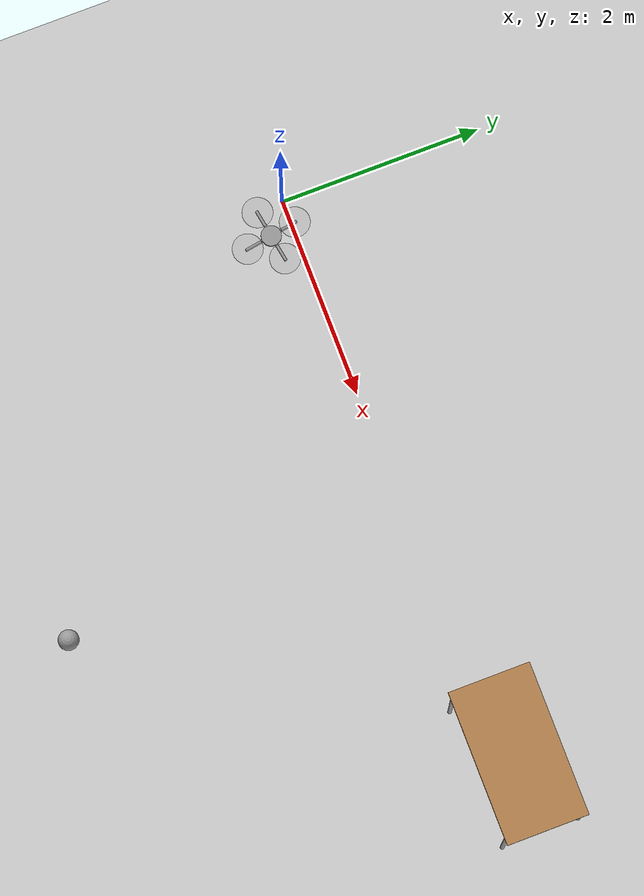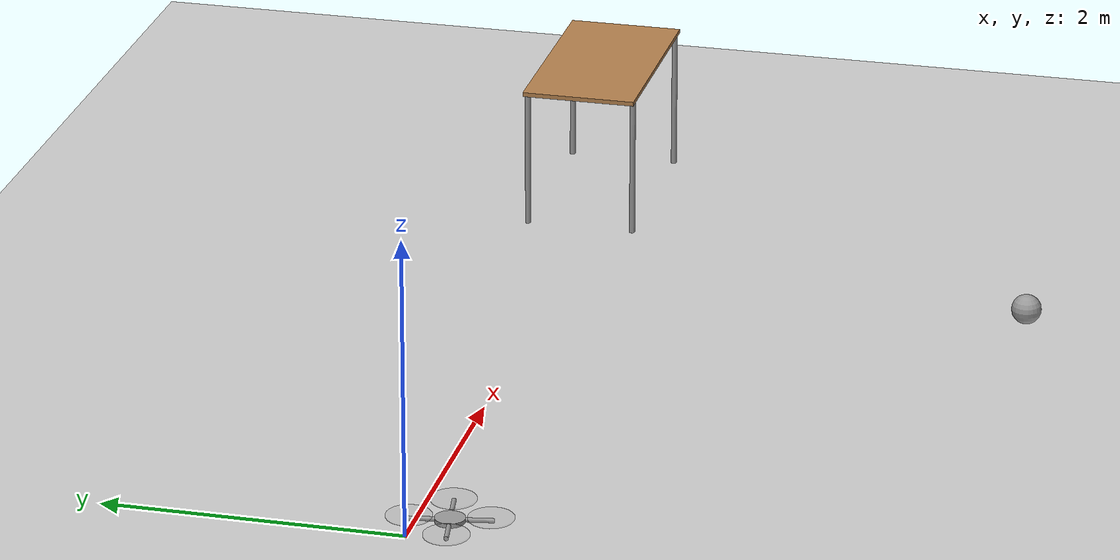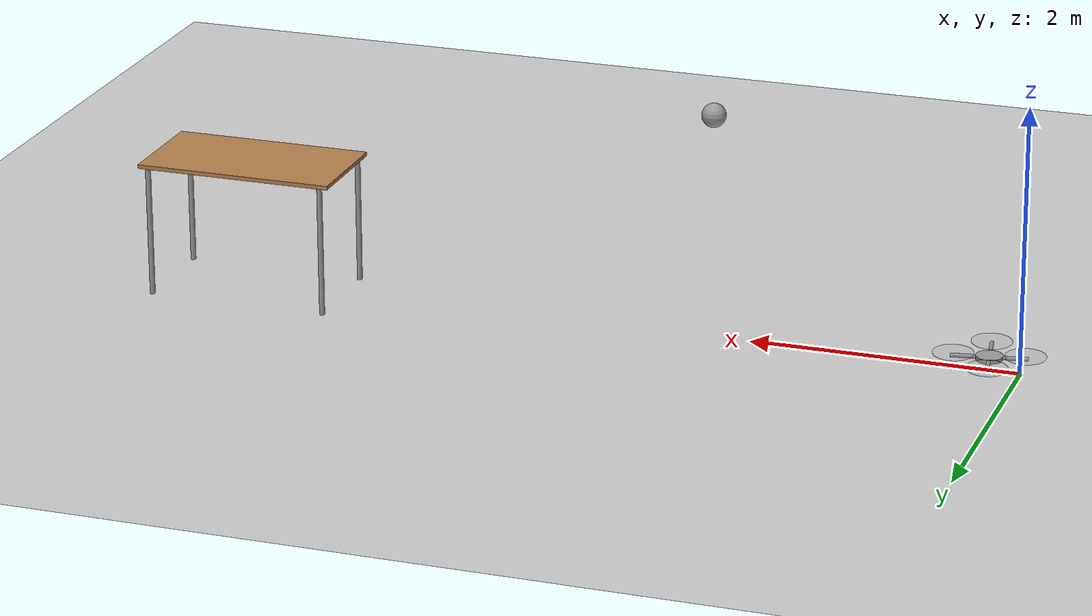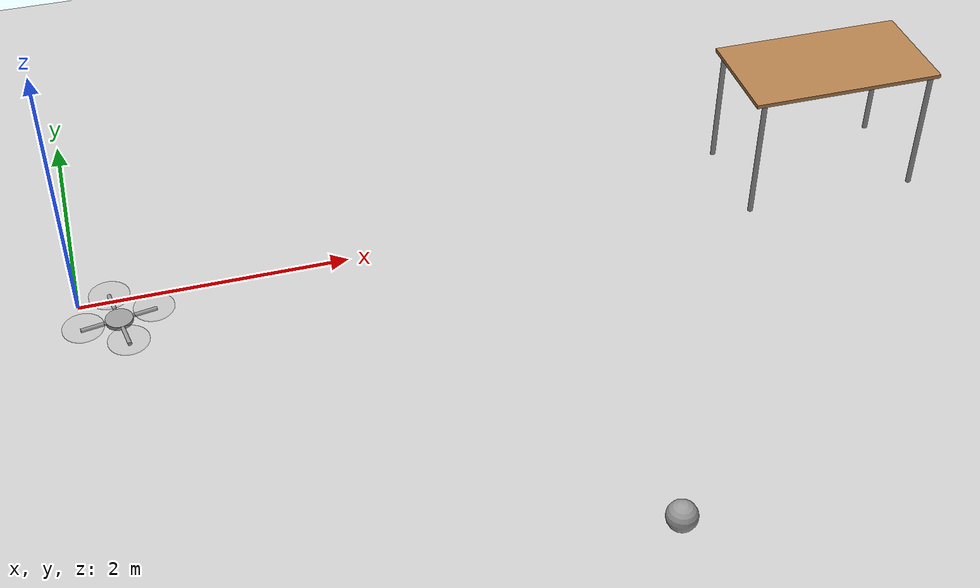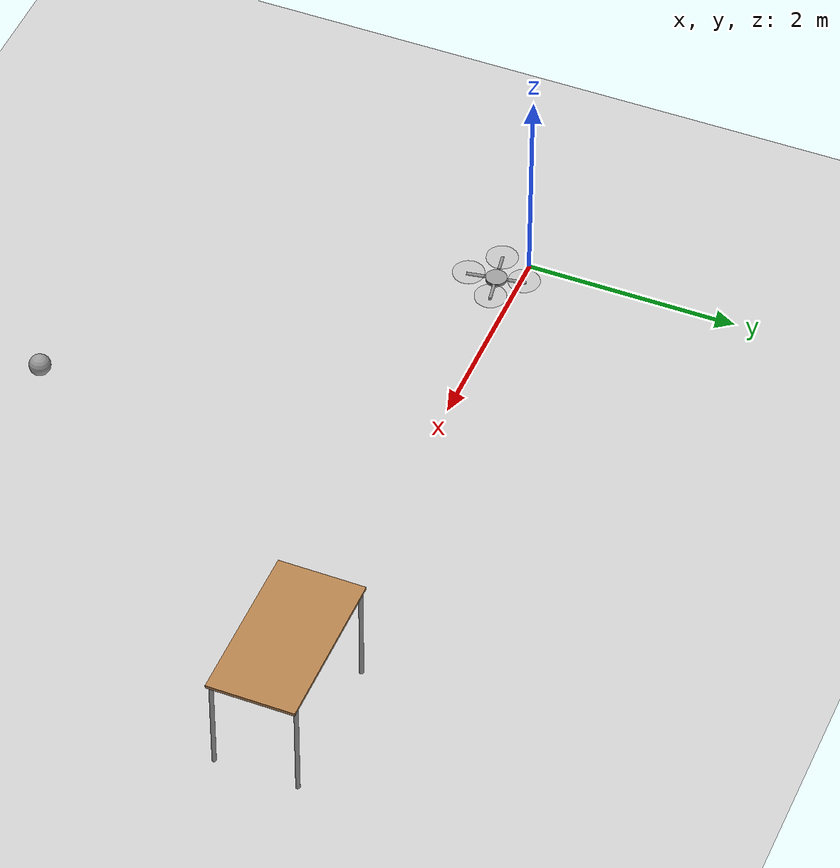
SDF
<sdf version="1.7">
 <world name="default">
  <model name="ground_plane">
   <static>1</static>
   <link name="link1">
    <collision name="collision">
     <geometry><plane><normal>0 0 1</normal><size>100 100</size></plane></geometry>
     <surface>
      <contact><collide_bitmask>65535</collide_bitmask></contact>
      <friction><ode><mu>100</mu><mu2>50</mu2></ode></friction>
     </surface>
    </collision>
    <visual name="visual">
     <cast_shadows>0</cast_shadows>
     <geometry><plane><normal>0 0 1</normal><size>100 100</size></plane></geometry>
     <material>
      <script><uri>file://media/materials/scripts/gazebo.material</uri><name>Gazebo/Grey</name></script>
     </material>
    </visual>
   </link>
  </model>
  <model name="quadrocopter">
   <link name="link_0">
    <inertial>
     <mass>1.10741</mass>
     <inertia>
      <ixx>0.00285158</ixx>
      <ixy>0</ixy>
      <ixz>0</ixz>
      <iyy>0.00285158</iyy>
      <iyz>0</iyz>
      <izz>0.00553706</izz>
     </inertia>
    </inertial>
    <pose>0.00067 0.037339 -0.008889 0 -0 0</pose>
    <visual name="visual">
     <geometry><cylinder><radius>0.1</radius><length>0.03</length></cylinder></geometry>
     <material>
      <lighting>1</lighting>
      <script><uri>file://media/materials/scripts/gazebo.material</uri><name>Gazebo/Grey</name></script>
      <shader type="pixel"><normal_map>__default__</normal_map></shader>
      <ambient>0.3 0.3 0.3 1</ambient>
      <diffuse>0.7 0.7 0.7 1</diffuse>
      <specular>0.01 0.01 0.01 1</specular>
      <emissive>0 0 0 1</emissive>
     </material>
    </visual>
    <collision name="collision">
     <geometry><cylinder><radius>0.1</radius><length>0.03</length></cylinder></geometry>
     <surface>
      <friction>
       <ode><mu>1</mu><mu2>1</mu2><fdir1>0 0 0</fdir1><slip1>0</slip1><slip2>0</slip2></ode>
       <torsional>
        <coefficient>1</coefficient>
        <patch_radius>0</patch_radius>
        <surface_radius>0</surface_radius>
        <use_patch_radius>1</use_patch_radius>
        <ode><slip>0</slip></ode>
       </torsional>
      </friction>
      <bounce><restitution_coefficient>0</restitution_coefficient><threshold>1e+06</threshold></bounce>
      <contact>
       <collide_without_contact>0</collide_without_contact>
       <collide_without_contact_bitmask>1</collide_without_contact_bitmask>
       <collide_bitmask>1</collide_bitmask>
       <ode>
        <soft_cfm>0</soft_cfm>
        <soft_erp>0.2</soft_erp>
        <kp>1e+13</kp>
        <kd>1</kd>
        <max_vel>0.01</max_vel>
        <min_depth>0</min_depth>
       </ode>
       <bullet>
        <split_impulse>1</split_impulse>
        <split_impulse_penetration_threshold>-0.01</split_impulse_penetration_threshold>
        <soft_cfm>0</soft_cfm>
        <soft_erp>0.2</soft_erp>
        <kp>1e+13</kp>
        <kd>1</kd>
       </bullet>
      </contact>
     </surface>
    </collision>
   </link>
   <link name="link_0_clone">
    <inertial>
     <mass>1.10741</mass>
     <inertia>
      <ixx>0.00285158</ixx>
      <ixy>0</ixy>
      <ixz>0</ixz>
      <iyy>0.00285158</iyy>
      <iyz>0</iyz>
      <izz>0.00553706</izz>
     </inertia>
    </inertial>
    <pose>0.00067 -0.222661 0.011111 0 -0 0</pose>
    <visual name="visual">
     <geometry><cylinder><radius>0.15</radius><length>0.01</length></cylinder></geometry>
     <material>
      <lighting>1</lighting>
      <script><uri>file://media/materials/scripts/gazebo.material</uri><name>Gazebo/Grey</name></script>
      <shader type="pixel"><normal_map>__default__</normal_map></shader>
      <ambient>0.1 0.1 0.1 1</ambient>
      <diffuse>0.7 0.7 0.7 1</diffuse>
      <specular>0.01 0.01 0.01 1</specular>
      <emissive>0 0 0 1</emissive>
     </material>
     <transparency>0.9</transparency>
    </visual>
    <collision name="collision">
     <geometry><cylinder><radius>0.15</radius><length>0.01</length></cylinder></geometry>
     <surface>
      <friction>
       <ode><mu>1</mu><mu2>1</mu2><fdir1>0 0 0</fdir1><slip1>0</slip1><slip2>0</slip2></ode>
       <torsional>
        <coefficient>1</coefficient>
        <patch_radius>0</patch_radius>
        <surface_radius>0</surface_radius>
        <use_patch_radius>1</use_patch_radius>
        <ode><slip>0</slip></ode>
       </torsional>
      </friction>
      <bounce><restitution_coefficient>0</restitution_coefficient><threshold>1e+06</threshold></bounce>
      <contact>
       <collide_without_contact>0</collide_without_contact>
       <collide_without_contact_bitmask>1</collide_without_contact_bitmask>
       <collide_bitmask>1</collide_bitmask>
       <ode>
        <soft_cfm>0</soft_cfm>
        <soft_erp>0.2</soft_erp>
        <kp>1e+13</kp>
        <kd>1</kd>
        <max_vel>0.01</max_vel>
        <min_depth>0</min_depth>
       </ode>
       <bullet>
        <split_impulse>1</split_impulse>
        <split_impulse_penetration_threshold>-0.01</split_impulse_penetration_threshold>
        <soft_cfm>0</soft_cfm>
        <soft_erp>0.2</soft_erp>
        <kp>1e+13</kp>
        <kd>1</kd>
       </bullet>
      </contact>
     </surface>
    </collision>
   </link>
   <link name="link_0_clone_clone">
    <inertial>
     <mass>1.10741</mass>
     <inertia>
      <ixx>0.00285158</ixx>
      <ixy>0</ixy>
      <ixz>0</ixz>
      <iyy>0.00285158</iyy>
      <iyz>0</iyz>
      <izz>0.00553706</izz>
     </inertia>
    </inertial>
    <pose>-0.25933 0.037339 0.011111 0 -0 0</pose>
    <visual name="visual">
     <geometry><cylinder><radius>0.15</radius><length>0.01</length></cylinder></geometry>
     <material>
      <lighting>1</lighting>
      <script><uri>file://media/materials/scripts/gazebo.material</uri><name>Gazebo/Grey</name></script>
      <shader type="pixel"><normal_map>__default__</normal_map></shader>
      <ambient>0.1 0.1 0.1 1</ambient>
      <diffuse>0.7 0.7 0.7 1</diffuse>
      <specular>0.01 0.01 0.01 1</specular>
      <emissive>0 0 0 1</emissive>
     </material>
     <transparency>0.9</transparency>
    </visual>
    <collision name="collision">
     <geometry><cylinder><radius>0.15</radius><length>0.01</length></cylinder></geometry>
     <surface>
      <friction>
       <ode><mu>1</mu><mu2>1</mu2><fdir1>0 0 0</fdir1><slip1>0</slip1><slip2>0</slip2></ode>
       <torsional>
        <coefficient>1</coefficient>
        <patch_radius>0</patch_radius>
        <surface_radius>0</surface_radius>
        <use_patch_radius>1</use_patch_radius>
        <ode><slip>0</slip></ode>
       </torsional>
      </friction>
      <bounce><restitution_coefficient>0</restitution_coefficient><threshold>1e+06</threshold></bounce>
      <contact>
       <collide_without_contact>0</collide_without_contact>
       <collide_without_contact_bitmask>1</collide_without_contact_bitmask>
       <collide_bitmask>1</collide_bitmask>
       <ode>
        <soft_cfm>0</soft_cfm>
        <soft_erp>0.2</soft_erp>
        <kp>1e+13</kp>
        <kd>1</kd>
        <max_vel>0.01</max_vel>
        <min_depth>0</min_depth>
       </ode>
       <bullet>
        <split_impulse>1</split_impulse>
        <split_impulse_penetration_threshold>-0.01</split_impulse_penetration_threshold>
        <soft_cfm>0</soft_cfm>
        <soft_erp>0.2</soft_erp>
        <kp>1e+13</kp>
        <kd>1</kd>
       </bullet>
      </contact>
     </surface>
    </collision>
   </link>
   <link name="link_0_clone_clone_0">
    <inertial>
     <mass>1.10741</mass>
     <inertia>
      <ixx>0.00285158</ixx>
      <ixy>0</ixy>
      <ixz>0</ixz>
      <iyy>0.00285158</iyy>
      <iyz>0</iyz>
      <izz>0.00553706</izz>
     </inertia>
    </inertial>
    <pose>0.00067 0.297339 0.011111 0 -0 0</pose>
    <visual name="visual">
     <geometry><cylinder><radius>0.15</radius><length>0.01</length></cylinder></geometry>
     <material>
      <lighting>1</lighting>
      <script><uri>file://media/materials/scripts/gazebo.material</uri><name>Gazebo/Grey</name></script>
      <shader type="pixel"><normal_map>__default__</normal_map></shader>
      <ambient>0.1 0.1 0.1 1</ambient>
      <diffuse>0.7 0.7 0.7 1</diffuse>
      <specular>0.01 0.01 0.01 1</specular>
      <emissive>0 0 0 1</emissive>
     </material>
     <transparency>0.9</transparency>
    </visual>
    <collision name="collision">
     <geometry><cylinder><radius>0.15</radius><length>0.01</length></cylinder></geometry>
     <surface>
      <friction>
       <ode><mu>1</mu><mu2>1</mu2><fdir1>0 0 0</fdir1><slip1>0</slip1><slip2>0</slip2></ode>
       <torsional>
        <coefficient>1</coefficient>
        <patch_radius>0</patch_radius>
        <surface_radius>0</surface_radius>
        <use_patch_radius>1</use_patch_radius>
        <ode><slip>0</slip></ode>
       </torsional>
      </friction>
      <bounce><restitution_coefficient>0</restitution_coefficient><threshold>1e+06</threshold></bounce>
      <contact>
       <collide_without_contact>0</collide_without_contact>
       <collide_without_contact_bitmask>1</collide_without_contact_bitmask>
       <collide_bitmask>1</collide_bitmask>
       <ode>
        <soft_cfm>0</soft_cfm>
        <soft_erp>0.2</soft_erp>
        <kp>1e+13</kp>
        <kd>1</kd>
        <max_vel>0.01</max_vel>
        <min_depth>0</min_depth>
       </ode>
       <bullet>
        <split_impulse>1</split_impulse>
        <split_impulse_penetration_threshold>-0.01</split_impulse_penetration_threshold>
        <soft_cfm>0</soft_cfm>
        <soft_erp>0.2</soft_erp>
        <kp>1e+13</kp>
        <kd>1</kd>
       </bullet>
      </contact>
     </surface>
    </collision>
   </link>
   <link name="link_0_clone_clone_1">
    <inertial>
     <mass>1.10741</mass>
     <inertia>
      <ixx>0.00285158</ixx>
      <ixy>0</ixy>
      <ixz>0</ixz>
      <iyy>0.00285158</iyy>
      <iyz>0</iyz>
      <izz>0.00553706</izz>
     </inertia>
    </inertial>
    <pose>0.26067 0.037339 0.011111 0 -0 0</pose>
    <visual name="visual">
     <geometry><cylinder><radius>0.15</radius><length>0.01</length></cylinder></geometry>
     <material>
      <lighting>1</lighting>
      <script><uri>file://media/materials/scripts/gazebo.material</uri><name>Gazebo/Grey</name></script>
      <shader type="pixel"><normal_map>__default__</normal_map></shader>
      <ambient>0.1 0.1 0.1 1</ambient>
      <diffuse>0.7 0.7 0.7 1</diffuse>
      <specular>0.01 0.01 0.01 1</specular>
      <emissive>0 0 0 1</emissive>
     </material>
     <transparency>0.9</transparency>
    </visual>
    <collision name="collision">
     <geometry><cylinder><radius>0.15</radius><length>0.01</length></cylinder></geometry>
     <surface>
      <friction>
       <ode><mu>1</mu><mu2>1</mu2><fdir1>0 0 0</fdir1><slip1>0</slip1><slip2>0</slip2></ode>
       <torsional>
        <coefficient>1</coefficient>
        <patch_radius>0</patch_radius>
        <surface_radius>0</surface_radius>
        <use_patch_radius>1</use_patch_radius>
        <ode><slip>0</slip></ode>
       </torsional>
      </friction>
      <bounce><restitution_coefficient>0</restitution_coefficient><threshold>1e+06</threshold></bounce>
      <contact>
       <collide_without_contact>0</collide_without_contact>
       <collide_without_contact_bitmask>1</collide_without_contact_bitmask>
       <collide_bitmask>1</collide_bitmask>
       <ode>
        <soft_cfm>0</soft_cfm>
        <soft_erp>0.2</soft_erp>
        <kp>1e+13</kp>
        <kd>1</kd>
        <max_vel>0.01</max_vel>
        <min_depth>0</min_depth>
       </ode>
       <bullet>
        <split_impulse>1</split_impulse>
        <split_impulse_penetration_threshold>-0.01</split_impulse_penetration_threshold>
        <soft_cfm>0</soft_cfm>
        <soft_erp>0.2</soft_erp>
        <kp>1e+13</kp>
        <kd>1</kd>
       </bullet>
      </contact>
     </surface>
    </collision>
   </link>
   <link name="link_1">
    <inertial>
     <mass>1</mass>
     <inertia><ixx>0.145833</ixx><ixy>0</ixy><ixz>0</ixz><iyy>0.145833</iyy><iyz>0</iyz><izz>0.125</izz></inertia>
    </inertial>
    <pose>0.00067 0.217339 -0.008889 0 -0 0</pose>
    <visual name="visual">
     <pose>0 0 0 1.5708 -0 0</pose>
     <geometry><cylinder><radius>0.015</radius><length>0.2</length></cylinder></geometry>
     <material>
      <lighting>1</lighting>
      <script><uri>file://media/materials/scripts/gazebo.material</uri><name>Gazebo/Grey</name></script>
      <shader type="pixel"><normal_map>__default__</normal_map></shader>
      <ambient>0.3 0.3 0.3 1</ambient>
      <diffuse>0.7 0.7 0.7 1</diffuse>
      <specular>0.01 0.01 0.01 1</specular>
      <emissive>0 0 0 1</emissive>
     </material>
    </visual>
    <collision name="collision">
     <pose>0 0 0 1.5708 -0 0</pose>
     <geometry><cylinder><radius>0.015</radius><length>0.2</length></cylinder></geometry>
     <surface>
      <friction>
       <ode><mu>1</mu><mu2>1</mu2><fdir1>0 0 0</fdir1><slip1>0</slip1><slip2>0</slip2></ode>
       <torsional>
        <coefficient>1</coefficient>
        <patch_radius>0</patch_radius>
        <surface_radius>0</surface_radius>
        <use_patch_radius>1</use_patch_radius>
        <ode><slip>0</slip></ode>
       </torsional>
      </friction>
      <bounce><restitution_coefficient>0</restitution_coefficient><threshold>1e+06</threshold></bounce>
      <contact>
       <collide_without_contact>0</collide_without_contact>
       <collide_without_contact_bitmask>1</collide_without_contact_bitmask>
       <collide_bitmask>1</collide_bitmask>
       <ode>
        <soft_cfm>0</soft_cfm>
        <soft_erp>0.2</soft_erp>
        <kp>1e+13</kp>
        <kd>1</kd>
        <max_vel>0.01</max_vel>
        <min_depth>0</min_depth>
       </ode>
       <bullet>
        <split_impulse>1</split_impulse>
        <split_impulse_penetration_threshold>-0.01</split_impulse_penetration_threshold>
        <soft_cfm>0</soft_cfm>
        <soft_erp>0.2</soft_erp>
        <kp>1e+13</kp>
        <kd>1</kd>
       </bullet>
      </contact>
     </surface>
    </collision>
   </link>
   <link name="link_1_clone">
    <inertial>
     <mass>1</mass>
     <inertia><ixx>0.145833</ixx><ixy>0</ixy><ixz>0</ixz><iyy>0.145833</iyy><iyz>0</iyz><izz>0.125</izz></inertia>
    </inertial>
    <pose>0.00067 -0.142661 -0.008889 0 -0 0</pose>
    <visual name="visual">
     <pose>0 0 0 1.5708 -0 0</pose>
     <geometry><cylinder><radius>0.015</radius><length>0.2</length></cylinder></geometry>
     <material>
      <lighting>1</lighting>
      <script><uri>file://media/materials/scripts/gazebo.material</uri><name>Gazebo/Grey</name></script>
      <shader type="pixel"><normal_map>__default__</normal_map></shader>
      <ambient>0.3 0.3 0.3 1</ambient>
      <diffuse>0.7 0.7 0.7 1</diffuse>
      <specular>0.01 0.01 0.01 1</specular>
      <emissive>0 0 0 1</emissive>
     </material>
    </visual>
    <collision name="collision">
     <pose>0 0 0 1.5708 -0 0</pose>
     <geometry><cylinder><radius>0.015</radius><length>0.2</length></cylinder></geometry>
     <surface>
      <friction>
       <ode><mu>1</mu><mu2>1</mu2><fdir1>0 0 0</fdir1><slip1>0</slip1><slip2>0</slip2></ode>
       <torsional>
        <coefficient>1</coefficient>
        <patch_radius>0</patch_radius>
        <surface_radius>0</surface_radius>
        <use_patch_radius>1</use_patch_radius>
        <ode><slip>0</slip></ode>
       </torsional>
      </friction>
      <bounce><restitution_coefficient>0</restitution_coefficient><threshold>1e+06</threshold></bounce>
      <contact>
       <collide_without_contact>0</collide_without_contact>
       <collide_without_contact_bitmask>1</collide_without_contact_bitmask>
       <collide_bitmask>1</collide_bitmask>
       <ode>
        <soft_cfm>0</soft_cfm>
        <soft_erp>0.2</soft_erp>
        <kp>1e+13</kp>
        <kd>1</kd>
        <max_vel>0.01</max_vel>
        <min_depth>0</min_depth>
       </ode>
       <bullet>
        <split_impulse>1</split_impulse>
        <split_impulse_penetration_threshold>-0.01</split_impulse_penetration_threshold>
        <soft_cfm>0</soft_cfm>
        <soft_erp>0.2</soft_erp>
        <kp>1e+13</kp>
        <kd>1</kd>
       </bullet>
      </contact>
     </surface>
    </collision>
   </link>
   <link name="link_1_clone_clone">
    <inertial>
     <mass>1</mass>
     <inertia><ixx>0.145833</ixx><ixy>0</ixy><ixz>0</ixz><iyy>0.145833</iyy><iyz>0</iyz><izz>0.125</izz></inertia>
    </inertial>
    <pose>-0.17933 0.037339 -0.008889 0 -0 0</pose>
    <visual name="visual">
     <pose>0 0 0 1.5708 -0 1.5708</pose>
     <geometry><cylinder><radius>0.015</radius><length>0.2</length></cylinder></geometry>
     <material>
      <lighting>1</lighting>
      <script><uri>file://media/materials/scripts/gazebo.material</uri><name>Gazebo/Grey</name></script>
      <shader type="pixel"><normal_map>__default__</normal_map></shader>
      <ambient>0.3 0.3 0.3 1</ambient>
      <diffuse>0.7 0.7 0.7 1</diffuse>
      <specular>0.01 0.01 0.01 1</specular>
      <emissive>0 0 0 1</emissive>
     </material>
    </visual>
    <collision name="collision">
     <pose>0 0 0 1.5708 -0 1.5708</pose>
     <geometry><cylinder><radius>0.015</radius><length>0.2</length></cylinder></geometry>
     <surface>
      <friction>
       <ode><mu>1</mu><mu2>1</mu2><fdir1>0 0 0</fdir1><slip1>0</slip1><slip2>0</slip2></ode>
       <torsional>
        <coefficient>1</coefficient>
        <patch_radius>0</patch_radius>
        <surface_radius>0</surface_radius>
        <use_patch_radius>1</use_patch_radius>
        <ode><slip>0</slip></ode>
       </torsional>
      </friction>
      <bounce><restitution_coefficient>0</restitution_coefficient><threshold>1e+06</threshold></bounce>
      <contact>
       <collide_without_contact>0</collide_without_contact>
       <collide_without_contact_bitmask>1</collide_without_contact_bitmask>
       <collide_bitmask>1</collide_bitmask>
       <ode>
        <soft_cfm>0</soft_cfm>
        <soft_erp>0.2</soft_erp>
        <kp>1e+13</kp>
        <kd>1</kd>
        <max_vel>0.01</max_vel>
        <min_depth>0</min_depth>
       </ode>
       <bullet>
        <split_impulse>1</split_impulse>
        <split_impulse_penetration_threshold>-0.01</split_impulse_penetration_threshold>
        <soft_cfm>0</soft_cfm>
        <soft_erp>0.2</soft_erp>
        <kp>1e+13</kp>
        <kd>1</kd>
       </bullet>
      </contact>
     </surface>
    </collision>
   </link>
   <link name="link_1_clone_clone_clone">
    <inertial>
     <mass>1</mass>
     <inertia><ixx>0.145833</ixx><ixy>0</ixy><ixz>0</ixz><iyy>0.145833</iyy><iyz>0</iyz><izz>0.125</izz></inertia>
    </inertial>
    <pose>0.18067 0.037339 -0.008889 0 -0 0</pose>
    <visual name="visual">
     <pose>0 0 0 1.5708 -0 1.5708</pose>
     <geometry><cylinder><radius>0.015</radius><length>0.2</length></cylinder></geometry>
     <material>
      <lighting>1</lighting>
      <script><uri>file://media/materials/scripts/gazebo.material</uri><name>Gazebo/Grey</name></script>
      <shader type="pixel"><normal_map>__default__</normal_map></shader>
      <ambient>0.3 0.3 0.3 1</ambient>
      <diffuse>0.7 0.7 0.7 1</diffuse>
      <specular>0.01 0.01 0.01 1</specular>
      <emissive>0 0 0 1</emissive>
     </material>
    </visual>
    <collision name="collision">
     <pose>0 0 0 1.5708 -0 1.5708</pose>
     <geometry><cylinder><radius>0.015</radius><length>0.2</length></cylinder></geometry>
     <surface>
      <friction>
       <ode><mu>1</mu><mu2>1</mu2><fdir1>0 0 0</fdir1><slip1>0</slip1><slip2>0</slip2></ode>
       <torsional>
        <coefficient>1</coefficient>
        <patch_radius>0</patch_radius>
        <surface_radius>0</surface_radius>
        <use_patch_radius>1</use_patch_radius>
        <ode><slip>0</slip></ode>
       </torsional>
      </friction>
      <bounce><restitution_coefficient>0</restitution_coefficient><threshold>1e+06</threshold></bounce>
      <contact>
       <collide_without_contact>0</collide_without_contact>
       <collide_without_contact_bitmask>1</collide_without_contact_bitmask>
       <collide_bitmask>1</collide_bitmask>
       <ode>
        <soft_cfm>0</soft_cfm>
        <soft_erp>0.2</soft_erp>
        <kp>1e+13</kp>
        <kd>1</kd>
        <max_vel>0.01</max_vel>
        <min_depth>0</min_depth>
       </ode>
       <bullet>
        <split_impulse>1</split_impulse>
        <split_impulse_penetration_threshold>-0.01</split_impulse_penetration_threshold>
        <soft_cfm>0</soft_cfm>
        <soft_erp>0.2</soft_erp>
        <kp>1e+13</kp>
        <kd>1</kd>
       </bullet>
      </contact>
     </surface>
    </collision>
   </link>
   <joint name="link_0_JOINT_0" type="fixed">
    <parent>link_0</parent>
    <child>link_1</child>
    <physics>
     <ode><limit><cfm>0</cfm><erp>0.2</erp></limit><suspension><cfm>0</cfm><erp>0.2</erp></suspension></ode>
    </physics>
   </joint>
   <joint name="link_0_JOINT_1" type="fixed">
    <parent>link_0</parent>
    <child>link_1_clone</child>
    <physics>
     <ode><limit><cfm>0</cfm><erp>0.2</erp></limit><suspension><cfm>0</cfm><erp>0.2</erp></suspension></ode>
    </physics>
   </joint>
   <joint name="link_0_JOINT_2" type="fixed">
    <parent>link_0</parent>
    <child>link_1_clone_clone</child>
    <physics>
     <ode><limit><cfm>0</cfm><erp>0.2</erp></limit><suspension><cfm>0</cfm><erp>0.2</erp></suspension></ode>
    </physics>
   </joint>
   <joint name="link_0_JOINT_3" type="fixed">
    <parent>link_0</parent>
    <child>link_1_clone_clone_clone</child>
    <physics>
     <ode><limit><cfm>0</cfm><erp>0.2</erp></limit><suspension><cfm>0</cfm><erp>0.2</erp></suspension></ode>
    </physics>
   </joint>
   <joint name="link_1_JOINT_6" type="revolute">
    <parent>link_1</parent>
    <child>link_0_clone_clone_0</child>
    <axis>
     <xyz>0 0 1</xyz>
     <limit>
      <lower>-1.79769e+308</lower>
      <upper>1.79769e+308</upper>
      <effort>-1</effort>
      <velocity>-1</velocity>
     </limit>
     <dynamics>
      <spring_reference>0</spring_reference>
      <spring_stiffness>0</spring_stiffness>
      <damping>0</damping>
     </dynamics>
    </axis>
    <physics>
     <ode><limit><cfm>0</cfm><erp>0.2</erp></limit><suspension><cfm>0</cfm><erp>0.2</erp></suspension></ode>
    </physics>
   </joint>
   <joint name="link_1_clone_JOINT_4" type="revolute">
    <parent>link_1_clone</parent>
    <child>link_0_clone</child>
    <axis>
     <xyz>0 0 1</xyz>
     <limit>
      <lower>-1.79769e+308</lower>
      <upper>1.79769e+308</upper>
      <effort>-1</effort>
      <velocity>-1</velocity>
     </limit>
     <dynamics>
      <spring_reference>0</spring_reference>
      <spring_stiffness>0</spring_stiffness>
      <damping>0</damping>
     </dynamics>
    </axis>
    <physics>
     <ode><limit><cfm>0</cfm><erp>0.2</erp></limit><suspension><cfm>0</cfm><erp>0.2</erp></suspension></ode>
    </physics>
   </joint>
   <joint name="link_1_clone_clone_JOINT_7" type="revolute">
    <parent>link_1_clone_clone</parent>
    <child>link_0_clone_clone</child>
    <axis>
     <xyz>0 0 1</xyz>
     <limit>
      <lower>-1.79769e+308</lower>
      <upper>1.79769e+308</upper>
      <effort>-1</effort>
      <velocity>-1</velocity>
     </limit>
     <dynamics>
      <spring_reference>0</spring_reference>
      <spring_stiffness>0</spring_stiffness>
      <damping>0</damping>
     </dynamics>
    </axis>
    <physics>
     <ode><limit><cfm>0</cfm><erp>0.2</erp></limit><suspension><cfm>0</cfm><erp>0.2</erp></suspension></ode>
    </physics>
   </joint>
   <joint name="link_1_clone_clone_clone_JOINT_5" type="revolute">
    <parent>link_1_clone_clone_clone</parent>
    <child>link_0_clone_clone_1</child>
    <axis>
     <xyz>0 0 1</xyz>
     <limit>
      <lower>-1.79769e+308</lower>
      <upper>1.79769e+308</upper>
      <effort>-1</effort>
      <velocity>-1</velocity>
     </limit>
     <dynamics>
      <spring_reference>0</spring_reference>
      <spring_stiffness>0</spring_stiffness>
      <damping>0</damping>
     </dynamics>
    </axis>
    <physics>
     <ode><limit><cfm>0</cfm><erp>0.2</erp></limit><suspension><cfm>0</cfm><erp>0.2</erp></suspension></ode>
    </physics>
   </joint>
   <static>0</static>
   <pose>0.281062 -0.25584 0.02389 -1.1e-05 -4e-06 0.168415</pose>
  </model>
  <model name="table">
   <static>1</static>
   <link name="link9">
    <collision name="surface">
     <pose>0 0 1 0 -0 0</pose>
     <geometry><box><size>1.5 0.8 0.03</size></box></geometry>
     <surface><friction><ode><mu>0.6</mu><mu2>0.6</mu2></ode></friction></surface>
    </collision>
    <visual name="visual1">
     <pose>0 0 1 0 -0 0</pose>
     <geometry><box><size>1.5 0.8 0.03</size></box></geometry>
     <material>
      <script><uri>file://media/materials/scripts/gazebo.material</uri><name>Gazebo/Wood</name></script>
     </material>
    </visual>
    <collision name="front_left_leg1">
     <pose>0.68 0.38 0.5 0 -0 0</pose>
     <geometry><cylinder><radius>0.02</radius><length>1</length></cylinder></geometry>
    </collision>
    <visual name="front_left_leg2">
     <pose>0.68 0.38 0.5 0 -0 0</pose>
     <geometry><cylinder><radius>0.02</radius><length>1</length></cylinder></geometry>
     <material>
      <script><uri>file://media/materials/scripts/gazebo.material</uri><name>Gazebo/Grey</name></script>
     </material>
    </visual>
    <collision name="front_right_leg3">
     <pose>0.68 -0.38 0.5 0 -0 0</pose>
     <geometry><cylinder><radius>0.02</radius><length>1</length></cylinder></geometry>
    </collision>
    <visual name="front_right_leg4">
     <pose>0.68 -0.38 0.5 0 -0 0</pose>
     <geometry><cylinder><radius>0.02</radius><length>1</length></cylinder></geometry>
     <material>
      <script><uri>file://media/materials/scripts/gazebo.material</uri><name>Gazebo/Grey</name></script>
     </material>
    </visual>
    <collision name="back_right_leg5">
     <pose>-0.68 -0.38 0.5 0 -0 0</pose>
     <geometry><cylinder><radius>0.02</radius><length>1</length></cylinder></geometry>
    </collision>
    <visual name="back_right_leg6">
     <pose>-0.68 -0.38 0.5 0 -0 0</pose>
     <geometry><cylinder><radius>0.02</radius><length>1</length></cylinder></geometry>
     <material>
      <script><uri>file://media/materials/scripts/gazebo.material</uri><name>Gazebo/Grey</name></script>
     </material>
    </visual>
    <collision name="back_left_leg7">
     <pose>-0.68 0.38 0.5 0 -0 0</pose>
     <geometry><cylinder><radius>0.02</radius><length>1</length></cylinder></geometry>
    </collision>
    <visual name="back_left_leg8">
     <pose>-0.68 0.38 0.5 0 -0 0</pose>
     <geometry><cylinder><radius>0.02</radius><length>1</length></cylinder></geometry>
     <material>
      <script><uri>file://media/materials/scripts/gazebo.material</uri><name>Gazebo/Grey</name></script>
     </material>
    </visual>
   </link>
   <pose>5.82073 0.107354 0 0 -0 0</pose>
  </model>
  <model name="my_ball.model">
   <link name="link_1">
    <inertial>
     <mass>1</mass>
     <inertia><ixx>0.1</ixx><ixy>0</ixy><ixz>0</ixz><iyy>0.1</iyy><iyz>0</iyz><izz>0.1</izz></inertia>
    </inertial>
    <visual name="visual">
     <geometry><sphere><radius>0.1</radius></sphere></geometry>
     <material>
      <lighting>1</lighting>
      <script><uri>file://media/materials/scripts/gazebo.material</uri><name>Gazebo/Grey</name></script>
      <shader type="pixel"><normal_map>__default__</normal_map></shader>
      <ambient>1 1 1 1</ambient>
      <diffuse>1 1 1 1</diffuse>
      <specular>1 1 1 1</specular>
      <emissive>1 1 1 1</emissive>
     </material>
    </visual>
    <collision name="collision">
     <geometry><sphere><radius>0.1</radius></sphere></geometry>
     <surface>
      <friction>
       <ode><mu>1</mu><mu2>1</mu2><fdir1>0 0 0</fdir1><slip1>0</slip1><slip2>0</slip2></ode>
       <torsional>
        <coefficient>1</coefficient>
        <patch_radius>0</patch_radius>
        <surface_radius>0</surface_radius>
        <use_patch_radius>1</use_patch_radius>
        <ode><slip>0</slip></ode>
       </torsional>
      </friction>
      <bounce><restitution_coefficient>0</restitution_coefficient><threshold>1e+06</threshold></bounce>
      <contact>
       <collide_without_contact>0</collide_without_contact>
       <collide_without_contact_bitmask>1</collide_without_contact_bitmask>
       <collide_bitmask>1</collide_bitmask>
       <ode>
        <soft_cfm>0</soft_cfm>
        <soft_erp>0.2</soft_erp>
        <kp>1e+13</kp>
        <kd>1</kd>
        <max_vel>0.01</max_vel>
        <min_depth>0</min_depth>
       </ode>
       <bullet>
        <split_impulse>1</split_impulse>
        <split_impulse_penetration_threshold>-0.01</split_impulse_penetration_threshold>
        <soft_cfm>0</soft_cfm>
        <soft_erp>0.2</soft_erp>
        <kp>1e+13</kp>
        <kd>1</kd>
       </bullet>
      </contact>
     </surface>
    </collision>
   </link>
   <static>0</static>
   <pose>3.30575 -3.37338 0.5 0 -0 0</pose>
  </model>
 </world>
</sdf>
